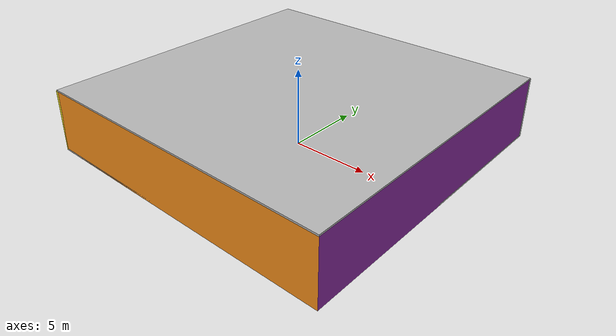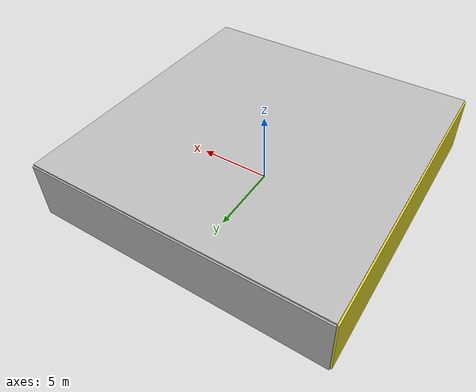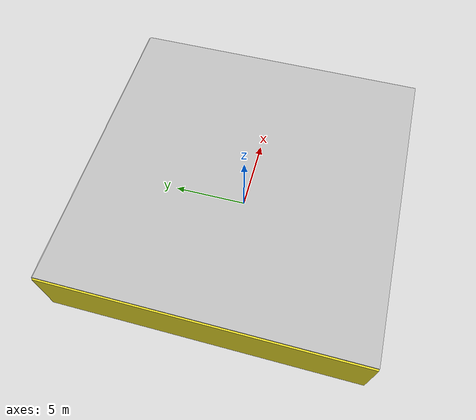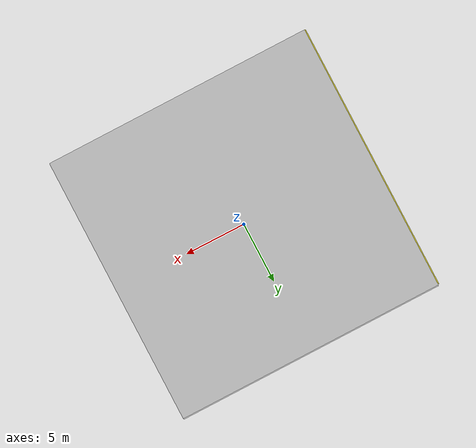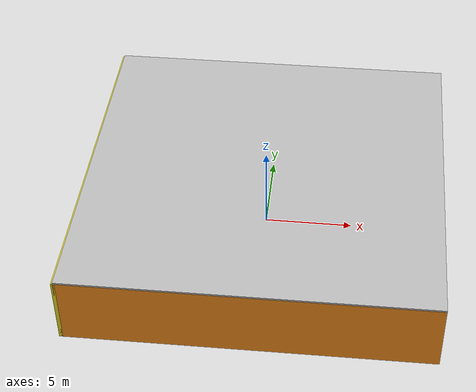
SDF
<sdf version="1.4">
 <world name="default">
  <physics type="ode">
   <max_step_size>0.001</max_step_size>
   <real_time_factor>1</real_time_factor>
   <real_time_update_rate>1000</real_time_update_rate>
   <gravity>0 0 -9.8</gravity>
  </physics>
  <scene><ambient>0.4 0.4 0.4 1</ambient><background>0.7 0.7 0.7 1</background><shadows>1</shadows></scene>
  <model name="Surrounding">
   <static>1</static>
   <link name="Ceiling">
    <collision name="Ceiling_Collision"><geometry><box><size>20 20 0.1</size></box></geometry></collision>
    <visual name="Ceiling_Visual">
     <geometry><box><size>20 20 0.1</size></box></geometry>
     <material>
      <script><uri>file://media/materials/scripts/gazebo.material</uri><name>Gazebo/CloudySky</name></script>
     </material>
    </visual>
    <pose>0 0 4.05 0 0 0</pose>
   </link>
   <link name="Wall_South">
    <collision name="Wall_South_Collision">
     <geometry><box><size>20 0 4</size></box></geometry>
     <pose>0 0 2 0 -0 0</pose>
    </collision>
    <visual name="Wall_South_Visual">
     <pose>0 0 2 0 -0 0</pose>
     <geometry><box><size>20 0 4</size></box></geometry>
     <material>
      <script><uri>file://media/materials/scripts/gazebo.material</uri><name>Gazebo/Orange</name></script>
     </material>
    </visual>
    <velocity_decay><linear>0</linear><angular>0</angular></velocity_decay>
    <pose>0 -10 0 0 -0 0</pose>
   </link>
   <link name="Wall_East">
    <collision name="Wall_21_Collision">
     <geometry><box><size>20 0 4</size></box></geometry>
     <pose>0 0 2 0 -0 0</pose>
    </collision>
    <visual name="Wall_21_Visual">
     <pose>0 0 2 0 -0 0</pose>
     <geometry><box><size>20 0 4</size></box></geometry>
     <material>
      <script><uri>file://media/materials/scripts/gazebo.material</uri><name>Gazebo/PurpleGlow</name></script>
     </material>
    </visual>
    <velocity_decay><linear>0</linear><angular>0</angular></velocity_decay>
    <pose>10 0 0 0 -0 1.5708</pose>
   </link>
   <link name="Wall_North">
    <collision name="Wall_22_Collision">
     <geometry><box><size>20 0.2 4</size></box></geometry>
     <pose>0 0 2 0 -0 0</pose>
    </collision>
    <visual name="Wall_22_Visual">
     <pose>0 0 2 0 -0 0</pose>
     <geometry><box><size>20 0.2 4</size></box></geometry>
     <material>
      <script><uri>file://media/materials/scripts/gazebo.material</uri><name>Gazebo/LightOn</name></script>
     </material>
    </visual>
    <velocity_decay><linear>0</linear><angular>0</angular></velocity_decay>
    <pose>0 10 0 0 -0 0</pose>
   </link>
   <link name="Wall_West">
    <collision name="Wall_23_Collision">
     <geometry><box><size>20 0.2 4</size></box></geometry>
     <pose>0 0 2 0 -0 0</pose>
    </collision>
    <visual name="Wall_23_Visual">
     <pose>0 0 2 0 -0 0</pose>
     <geometry><box><size>20 0.2 4</size></box></geometry>
     <material>
      <script><uri>file://media/materials/scripts/gazebo.material</uri><name>Gazebo/YellowGlow</name></script>
     </material>
    </visual>
    <velocity_decay><linear>0</linear><angular>0</angular></velocity_decay>
    <pose>-10 0 0 0 0 -1.5708</pose>
   </link>
   <link name="Ground_link">
    <collision name="collision">
     <pose>0 0 .05 0 -0 0</pose>
     <geometry><box><size>20 20 0.1</size></box></geometry>
    </collision>
    <visual name="visual">
     <pose>0 0 .05 0 -0 0</pose>
     <geometry><box><size>20 20 0.1</size></box></geometry>
     <material>
      <script><uri>file://media/materials/scripts/gazebo.material</uri><name>Gazebo/Pioneer2Body</name></script>
     </material>
    </visual>
   </link>
   <static>1</static>
  </model>
  <spherical_coordinates>
   <surface_model>EARTH_WGS84</surface_model>
   <latitude_deg>0</latitude_deg>
   <longitude_deg>0</longitude_deg>
   <elevation>0</elevation>
   <heading_deg>0</heading_deg>
  </spherical_coordinates>
  <light name="lightball_0" type="diffuse">
   <diffuse>0.8 0.8 0.8 1</diffuse>
   <specular>0.2 0.2 0.2 1</specular>
   <attenuation>
    <range>100</range>
    <constant>0.7</constant>
    <linear>0.01</linear>
    <quadratic>0.001</quadratic>
   </attenuation>
   <direction>-0.5 0.1 -0.9</direction>
   <pose>2.03672932532 8.38018011518 3.72365217501 0 0 0</pose>
  </light>
  <light name="lightball_1" type="diffuse">
   <diffuse>0.8 0.8 0.8 1</diffuse>
   <specular>0.2 0.2 0.2 1</specular>
   <attenuation>
    <range>100</range>
    <constant>0.7</constant>
    <linear>0.01</linear>
    <quadratic>0.001</quadratic>
   </attenuation>
   <direction>-0.5 0.1 -0.9</direction>
   <pose>9.99135515906 -8.86931687487 3.03236692286 0 0 0</pose>
  </light>
  <light name="lightball_2" type="diffuse">
   <diffuse>0.8 0.8 0.8 1</diffuse>
   <specular>0.2 0.2 0.2 1</specular>
   <attenuation>
    <range>100</range>
    <constant>0.7</constant>
    <linear>0.01</linear>
    <quadratic>0.001</quadratic>
   </attenuation>
   <direction>-0.5 0.1 -0.9</direction>
   <pose>2.61790337865 4.30115291319 0.582469117549 0 0 0</pose>
  </light>
  <light name="lightball_3" type="diffuse">
   <diffuse>0.8 0.8 0.8 1</diffuse>
   <specular>0.2 0.2 0.2 1</specular>
   <attenuation>
    <range>100</range>
    <constant>0.7</constant>
    <linear>0.01</linear>
    <quadratic>0.001</quadratic>
   </attenuation>
   <direction>-0.5 0.1 -0.9</direction>
   <pose>0.516273813164 0.39553456647 3.02212156553 0 0 0</pose>
  </light>
  <light name="lightball_4" type="diffuse">
   <diffuse>0.8 0.8 0.8 1</diffuse>
   <specular>0.2 0.2 0.2 1</specular>
   <attenuation>
    <range>100</range>
    <constant>0.7</constant>
    <linear>0.01</linear>
    <quadratic>0.001</quadratic>
   </attenuation>
   <direction>-0.5 0.1 -0.9</direction>
   <pose>2.15852532442 -7.36337337218 2.60966282521 0 0 0</pose>
  </light>
  <light name="lightball_5" type="diffuse">
   <diffuse>0.8 0.8 0.8 1</diffuse>
   <specular>0.2 0.2 0.2 1</specular>
   <attenuation>
    <range>100</range>
    <constant>0.7</constant>
    <linear>0.01</linear>
    <quadratic>0.001</quadratic>
   </attenuation>
   <direction>-0.5 0.1 -0.9</direction>
   <pose>-9.79344028641 -0.57381361364 3.22565371516 0 0 0</pose>
  </light>
  <light name="lightball_6" type="diffuse">
   <diffuse>0.8 0.8 0.8 1</diffuse>
   <specular>0.2 0.2 0.2 1</specular>
   <attenuation>
    <range>100</range>
    <constant>0.7</constant>
    <linear>0.01</linear>
    <quadratic>0.001</quadratic>
   </attenuation>
   <direction>-0.5 0.1 -0.9</direction>
   <pose>7.95295252773 8.12700782816 0.683425270587 0 0 0</pose>
  </light>
  <light name="lightball_7" type="diffuse">
   <diffuse>0.8 0.8 0.8 1</diffuse>
   <specular>0.2 0.2 0.2 1</specular>
   <attenuation>
    <range>100</range>
    <constant>0.7</constant>
    <linear>0.01</linear>
    <quadratic>0.001</quadratic>
   </attenuation>
   <direction>-0.5 0.1 -0.9</direction>
   <pose>1.87077203094 0.166233607432 1.31573028496 0 0 0</pose>
  </light>
  <light name="lightball_8" type="diffuse">
   <diffuse>0.8 0.8 0.8 1</diffuse>
   <specular>0.2 0.2 0.2 1</specular>
   <attenuation>
    <range>100</range>
    <constant>0.7</constant>
    <linear>0.01</linear>
    <quadratic>0.001</quadratic>
   </attenuation>
   <direction>-0.5 0.1 -0.9</direction>
   <pose>-8.75671584194 2.15902073301 0.713183538731 0 0 0</pose>
  </light>
  <light name="lightball_9" type="diffuse">
   <diffuse>0.8 0.8 0.8 1</diffuse>
   <specular>0.2 0.2 0.2 1</specular>
   <attenuation>
    <range>100</range>
    <constant>0.7</constant>
    <linear>0.01</linear>
    <quadratic>0.001</quadratic>
   </attenuation>
   <direction>-0.5 0.1 -0.9</direction>
   <pose>-6.43003842034 -8.95262516331 1.34789870577 0 0 0</pose>
  </light>
  <light name="lightball_10" type="diffuse">
   <diffuse>0.8 0.8 0.8 1</diffuse>
   <specular>0.2 0.2 0.2 1</specular>
   <attenuation>
    <range>100</range>
    <constant>0.7</constant>
    <linear>0.01</linear>
    <quadratic>0.001</quadratic>
   </attenuation>
   <direction>-0.5 0.1 -0.9</direction>
   <pose>3.95273200816 1.94826911492 2.79634101458 0 0 0</pose>
  </light>
  <light name="lightball_11" type="diffuse">
   <diffuse>0.8 0.8 0.8 1</diffuse>
   <specular>0.2 0.2 0.2 1</specular>
   <attenuation>
    <range>100</range>
    <constant>0.7</constant>
    <linear>0.01</linear>
    <quadratic>0.001</quadratic>
   </attenuation>
   <direction>-0.5 0.1 -0.9</direction>
   <pose>-0.147199349121 1.52022859482 3.21903416333 0 0 0</pose>
  </light>
  <light name="lightball_12" type="diffuse">
   <diffuse>0.8 0.8 0.8 1</diffuse>
   <specular>0.2 0.2 0.2 1</specular>
   <attenuation>
    <range>100</range>
    <constant>0.7</constant>
    <linear>0.01</linear>
    <quadratic>0.001</quadratic>
   </attenuation>
   <direction>-0.5 0.1 -0.9</direction>
   <pose>-5.97688647117 -0.149179465229 2.91604901543 0 0 0</pose>
  </light>
  <light name="lightball_13" type="diffuse">
   <diffuse>0.8 0.8 0.8 1</diffuse>
   <specular>0.2 0.2 0.2 1</specular>
   <attenuation>
    <range>100</range>
    <constant>0.7</constant>
    <linear>0.01</linear>
    <quadratic>0.001</quadratic>
   </attenuation>
   <direction>-0.5 0.1 -0.9</direction>
   <pose>4.33230588261 -5.65663123061 3.36972445986 0 0 0</pose>
  </light>
  <include><uri>model://cabinet</uri><pose>-7.01953194382 -7.83175893441 0 0 0 2.2158431905</pose></include>
  <include><uri>model://cabinet</uri><pose>-6.92861853726 0.338442558164 0 0 0 0.571722448525</pose></include>
  <include><uri>model://cabinet</uri><pose>-4.68189929238 -1.8436280618 0 0 0 0.641872091228</pose></include>
  <include>
   <uri>model://textured_shapes</uri>
   <pose>-2.65209961065 -3.76356041168 0 0 0 1.26115111835</pose>
  </include>
  <include><uri>model://cabinet</uri><pose>1.70446852056 7.02497147121 0 0 0 2.65888466877</pose></include>
  <include><uri>model://table</uri><pose>4.97526776755 7.85734700543 0 0 0 0.13995818444</pose></include>
 </world>
</sdf>

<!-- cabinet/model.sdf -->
<sdf version="1.5">
  <model name="cabinet">
    <static>true</static>
    <link name="cabinet_bottom_plate">
      <inertial>
        <pose>0 0 -1 0 0 0</pose>
        <inertia>
          <ixx>2.050000</ixx>
          <ixy>0</ixy>
          <ixz>0</ixz>
          <iyy>2.050000</iyy>
          <iyz>0</iyz>
          <izz>2.050000</izz>
        </inertia>
        <mass>25.000000</mass>
      </inertial>
      <collision name="cabinet_bottom_plate_geom">
        <pose>0 0 0.010000 0 0 0</pose>
        <geometry>
          <box>
            <size>0.450000 0.450000 0.020000</size>
          </box>
        </geometry>
      </collision>
      <visual name="cabinet_bottom_plate_geom_visual">
        <pose>0 0 0.010000 0 0 0</pose>
        <geometry>
          <box>
            <size>0.450000 0.450000 0.020000</size>
          </box>
        </geometry>
        <material>
          <script>
            <uri>model://media/materials/scripts/gazebo.material</uri>
            <name>Gazebo/Wood</name>
          </script>
        </material>
      </visual>
      <collision name="cabinet_bottom_plate_geom_cabinet_back_plate">
        <pose>0.235000 0 0.510000 0 0 0</pose>
        <geometry>
          <box>
            <size>0.020000 0.450000 1.020000</size>
          </box>
        </geometry>
      </collision>
      <visual name="cabinet_bottom_plate_geom_cabinet_back_plate_visual">
        <pose>0.235000 0 0.510000 0 0 0</pose>
        <geometry>
          <box>
            <size>0.020000 0.450000 1.020000</size>
          </box>
        </geometry>
        <material>
          <script>
            <uri>model://media/materials/scripts/gazebo.material</uri>
            <name>Gazebo/Wood</name>
          </script>
        </material>
      </visual>
      <collision name="cabinet_bottom_plate_geom_cabinet_left_plate">
        <pose>0 0.235000 0.510000 0 0 0</pose>
        <geometry>
          <box>
            <size>0.450000 0.020000 1.020000</size>
          </box>
        </geometry>
      </collision>
      <visual name="cabinet_bottom_plate_geom_cabinet_left_plate_visual">
        <pose>0 0.235000 0.510000 0 0 0</pose>
        <geometry>
          <box>
            <size>0.450000 0.020000 1.020000</size>
          </box>
        </geometry>
        <material>
          <script>
            <uri>model://media/materials/scripts/gazebo.material</uri>
            <name>Gazebo/Wood</name>
          </script>
        </material>
      </visual>
      <collision name="cabinet_bottom_plate_geom_cabinet_middle_plate">
        <pose>0 0 0.510000 0 0 0</pose>
        <geometry>
          <box>
            <size>0.450000 0.450000 0.020000</size>
          </box>
        </geometry>
      </collision>
      <visual name="cabinet_bottom_plate_geom_cabinet_middle_plate_visual">
        <pose>0 0 0.510000 0 0 0</pose>
        <geometry>
          <box>
            <size>0.450000 0.450000 0.020000</size>
          </box>
        </geometry>
        <material>
          <script>
            <uri>model://media/materials/scripts/gazebo.material</uri>
            <name>Gazebo/Wood</name>
          </script>
        </material>
      </visual>
      <collision name="cabinet_bottom_plate_geom_cabinet_right_plate">
        <pose>0 -0.235000 0.510000 0 0 0</pose>
        <geometry>
          <box>
            <size>0.450000 0.020000 1.020000</size>
          </box>
        </geometry>
      </collision>
      <visual name="cabinet_bottom_plate_geom_cabinet_right_plate_visual">
        <pose>0 -0.235000 0.510000 0 0 0</pose>
        <geometry>
          <box>
            <size>0.450000 0.020000 1.020000</size>
          </box>
        </geometry>
        <material>
          <script>
            <uri>model://media/materials/scripts/gazebo.material</uri>
            <name>Gazebo/Wood</name>
          </script>
        </material>
      </visual>
      <collision name="cabinet_bottom_plate_geom_cabinet_top_plate">
        <pose>0 0 1.010000 0 0 0</pose>
        <geometry>
          <box>
            <size>0.450000 0.450000 0.020000</size>
          </box>
        </geometry>
      </collision>
      <visual name="cabinet_bottom_plate_geom_cabinet_top_plate_visual">
        <pose>0 0 1.010000 0 0 0</pose>
        <geometry>
          <box>
            <size>0.450000 0.450000 0.020000</size>
          </box>
        </geometry>
        <material>
          <script>
            <uri>model://media/materials/scripts/gazebo.material</uri>
            <name>Gazebo/Wood</name>
          </script>
        </material>
      </visual>
    </link>
  </model>
</sdf>

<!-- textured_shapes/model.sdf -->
<sdf version="1.6">
  <model name="textured_shapes">
    <pose>0 0 0.5 0 0 0</pose>
    <link name="box">
      <pose>0 -1.5 0 0 0 0</pose>
      <collision name="collision">
        <geometry>
          <box>
            <size>1 1 1</size>
          </box>
        </geometry>
      </collision>
      <visual name="visual">
        <geometry>
          <box>
            <size>1 1 1</size>
          </box>
        </geometry>
        <material>
          <script>
            <uri>model://../model_source/models/textured_shapes/materials/scripts</uri>
            <uri>model://../model_source/models/textured_shapes/materials/textures</uri>
            <name>TexturedShape/Squares</name>
          </script>
        </material>
      </visual>
    </link>
    <link name="sphere">
      <collision name="collision">
        <geometry>
          <sphere>
            <radius>0.5</radius>
          </sphere>
        </geometry>
      </collision>
      <visual name="visual">
        <geometry>
          <sphere>
            <radius>0.5</radius>
          </sphere>
        </geometry>
        <material>
          <script>
            <uri>model://../model_source/models/textured_shapes/materials/scripts</uri>
            <uri>model://../model_source/models/textured_shapes/materials/textures</uri>
            <name>TexturedShape/Squares</name>
          </script>
        </material>
      </visual>
    </link>
    <link name="cylinder">
      <pose>0 1.5 0 0 0 0</pose>
      <collision name="collision">
        <geometry>
          <cylinder>
            <radius>0.5</radius>
            <length>1</length>
          </cylinder>
        </geometry>
      </collision>
      <visual name="visual">
        <geometry>
          <cylinder>
            <radius>0.5</radius>
            <length>1</length>
          </cylinder>
        </geometry>
        <material>
          <script>
            <uri>model://../model_source/models/textured_shapes/materials/scripts</uri>
            <uri>model://../model_source/models/textured_shapes/materials/textures</uri>
            <name>TexturedShape/Squares</name>
          </script>
        </material>
      </visual>
    </link>
  </model>
</sdf>

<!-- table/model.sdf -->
<sdf version="1.5">
  <model name="table">
    <static>true</static>
    <link name="link">
      <collision name="surface">
        <pose>0 0 1.0 0 0 0</pose>
        <geometry>
          <box>
            <size>1.5 0.8 0.03</size>
          </box>
        </geometry>
        <surface>
          <friction>
            <ode>
              <mu>0.6</mu>
              <mu2>0.6</mu2>
            </ode>
          </friction>
        </surface>
      </collision>
      <visual name="visual1">
        <pose>0 0 1.0 0 0 0</pose>
        <geometry>
          <box>
            <size>1.5 0.8 0.03</size>
          </box>
        </geometry>
        <material>
          <script>
            <uri>model://media/materials/scripts/gazebo.material</uri>
            <name>Gazebo/Wood</name>
          </script>
        </material>
      </visual>
      <collision name="front_left_leg">
        <pose>0.68 0.38 0.5 0 0 0</pose>
        <geometry>
          <cylinder>
            <radius>0.02</radius>
            <length>1.0</length>
          </cylinder>
        </geometry>
      </collision>
      <visual name="front_left_leg">
        <pose>0.68 0.38 0.5 0 0 0</pose>
        <geometry>
          <cylinder>
            <radius>0.02</radius>
            <length>1.0</length>
          </cylinder>
        </geometry>
        <material>
          <script>
            <uri>model://media/materials/scripts/gazebo.material</uri>
            <name>Gazebo/Grey</name>
          </script>
        </material>
      </visual>
      <collision name="front_right_leg">
        <pose>0.68 -0.38 0.5 0 0 0</pose>
        <geometry>
          <cylinder>
            <radius>0.02</radius>
            <length>1.0</length>
          </cylinder>
        </geometry>
      </collision>
      <visual name="front_right_leg">
        <pose>0.68 -0.38 0.5 0 0 0</pose>
        <geometry>
          <cylinder>
            <radius>0.02</radius>
            <length>1.0</length>
          </cylinder>
        </geometry>
        <material>
          <script>
            <uri>model://media/materials/scripts/gazebo.material</uri>
            <name>Gazebo/Grey</name>
          </script>
        </material>
      </visual>
      <collision name="back_right_leg">
        <pose>-0.68 -0.38 0.5 0 0 0</pose>
        <geometry>
          <cylinder>
            <radius>0.02</radius>
            <length>1.0</length>
          </cylinder>
        </geometry>
      </collision>
      <visual name="back_right_leg">
        <pose>-0.68 -0.38 0.5 0 0 0</pose>
        <geometry>
          <cylinder>
            <radius>0.02</radius>
            <length>1.0</length>
          </cylinder>
        </geometry>
        <material>
          <script>
            <uri>model://media/materials/scripts/gazebo.material</uri>
            <name>Gazebo/Grey</name>
          </script>
        </material>
      </visual>
      <collision name="back_left_leg">
        <pose>-0.68 0.38 0.5 0 0 0</pose>
        <geometry>
          <cylinder>
            <radius>0.02</radius>
            <length>1.0</length>
          </cylinder>
        </geometry>
      </collision>
      <visual name="back_left_leg">
        <pose>-0.68 0.38 0.5 0 0 0</pose>
        <geometry>
          <cylinder>
            <radius>0.02</radius>
            <length>1.0</length>
          </cylinder>
        </geometry>
        <material>
          <script>
            <uri>model://media/materials/scripts/gazebo.material</uri>
            <name>Gazebo/Grey</name>
          </script>
        </material>
      </visual>
    </link>
  </model>
</sdf>
